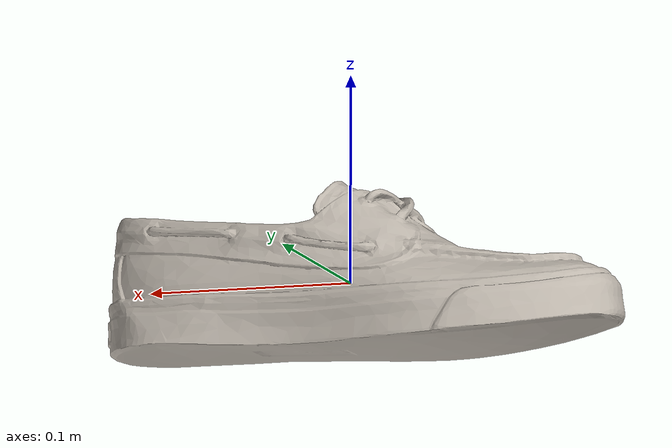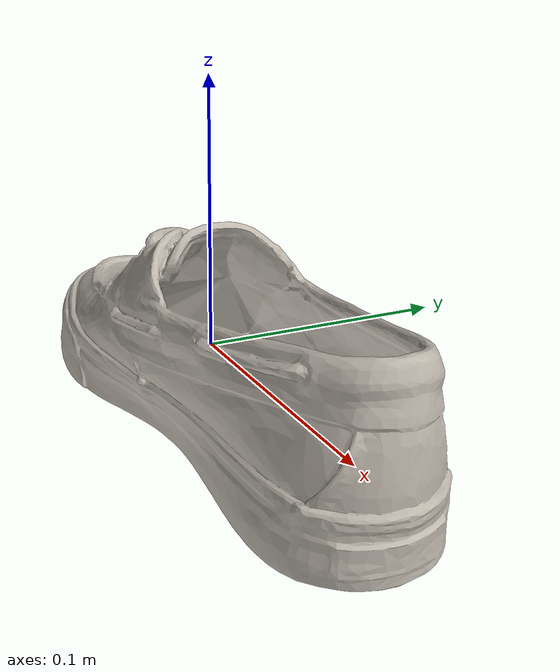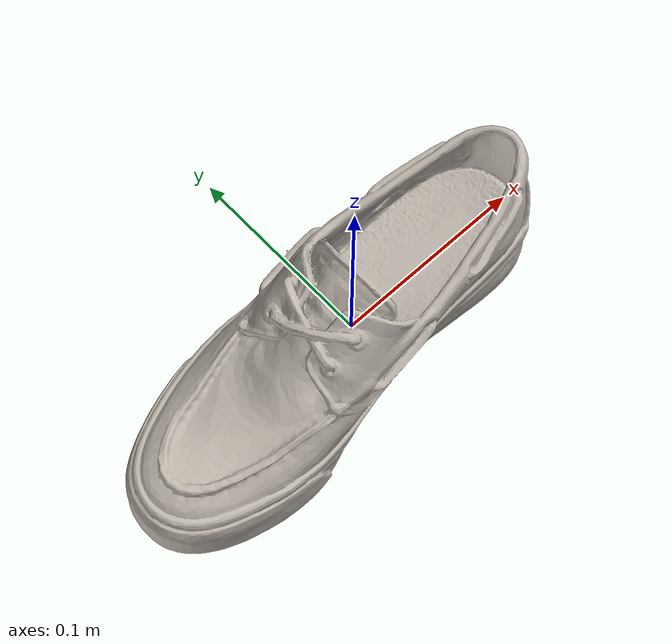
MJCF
<mujoco model="mouse">
  <asset>
    <texture type="2d" name="texture" file="texture.png"/>
    <material name="material_0" texture="texture" specular="0.5" shininess="0.5"/>
    <mesh name="model" file="model.obj"/>
    <mesh name="model_collision_0" file="model_collision_0.obj"/>
    <mesh name="model_collision_1" file="model_collision_1.obj"/>
    <mesh name="model_collision_2" file="model_collision_2.obj"/>
    <mesh name="model_collision_3" file="model_collision_3.obj"/>
    <mesh name="model_collision_4" file="model_collision_4.obj"/>
    <mesh name="model_collision_5" file="model_collision_5.obj"/>
    <mesh name="model_collision_6" file="model_collision_6.obj"/>
    <mesh name="model_collision_7" file="model_collision_7.obj"/>
    <mesh name="model_collision_8" file="model_collision_8.obj"/>
    <mesh name="model_collision_9" file="model_collision_9.obj"/>
    <mesh name="model_collision_10" file="model_collision_10.obj"/>
    <mesh name="model_collision_11" file="model_collision_11.obj"/>
    <mesh name="model_collision_12" file="model_collision_12.obj"/>
    <mesh name="model_collision_13" file="model_collision_13.obj"/>
    <mesh name="model_collision_14" file="model_collision_14.obj"/>
    <mesh name="model_collision_15" file="model_collision_15.obj"/>
    <mesh name="model_collision_16" file="model_collision_16.obj"/>
  </asset>

  <worldbody>
    <body>
        <body name="object" pos="0 0 0">
            <body name="mouse" pos="0 0 0" quat="1 0 0 0">
                <inertial pos="0 0 0" mass="0.2" diaginertia="1e-3 1e-3 1e-3" />

                <geom material="material_0" mesh="model" type="mesh" contype="0" conaffinity="0" group="2"/>

                                <geom mesh="model_collision_0" type="mesh" group="3"/>
                <geom mesh="model_collision_1" type="mesh" group="3"/>
                <geom mesh="model_collision_2" type="mesh" group="3"/>
                <geom mesh="model_collision_3" type="mesh" group="3"/>
                <geom mesh="model_collision_4" type="mesh" group="3"/>
                <geom mesh="model_collision_5" type="mesh" group="3"/>
                <geom mesh="model_collision_6" type="mesh" group="3"/>
                <geom mesh="model_collision_7" type="mesh" group="3"/>
                <geom mesh="model_collision_8" type="mesh" group="3"/>
                <geom mesh="model_collision_9" type="mesh" group="3"/>
                <geom mesh="model_collision_10" type="mesh" group="3"/>
                <geom mesh="model_collision_11" type="mesh" group="3"/>
                <geom mesh="model_collision_12" type="mesh" group="3"/>
                <geom mesh="model_collision_13" type="mesh" group="3"/>
                <geom mesh="model_collision_14" type="mesh" group="3"/>
                <geom mesh="model_collision_15" type="mesh" group="3"/>
                <geom mesh="model_collision_16" type="mesh" group="3"/>
            </body>
        </body>

      <site rgba="0 0 0 0" size="0.01" pos="0 0 -0.01" quat="1 0 0 0" name="bottom_site"/>
      <site rgba="0 0 0 0" size="0.01" pos="0 0 0.01" quat="1 0 0 0" name="top_site"/>
      <site rgba="0 0 0 0" size="0.01" pos="0.08 0 0" quat="1 0 0 0" name="horizontal_radius_site"/>
    </body>
  </worldbody>
</mujoco>
